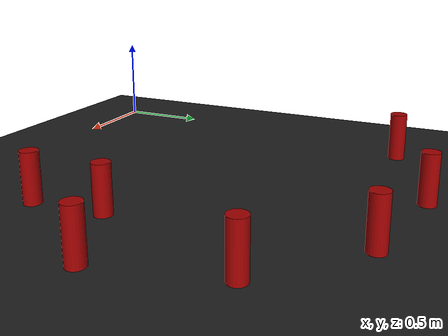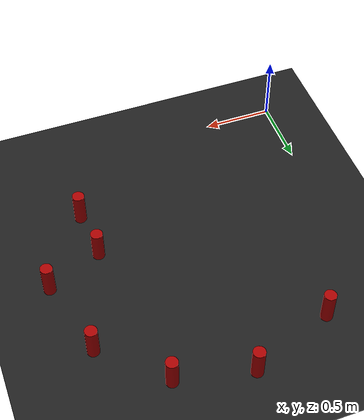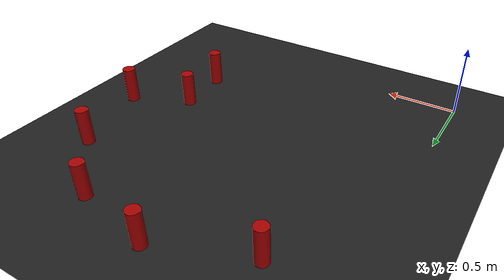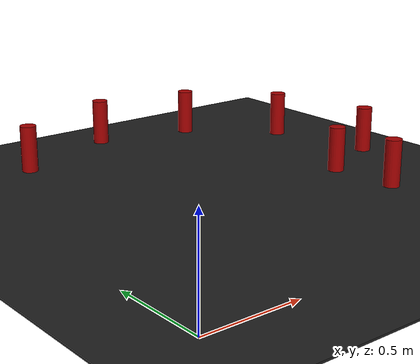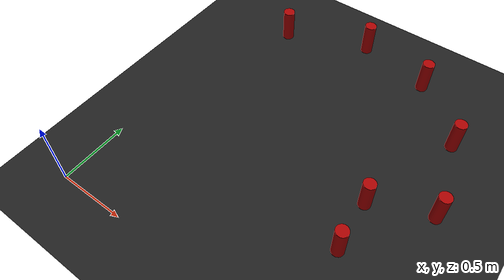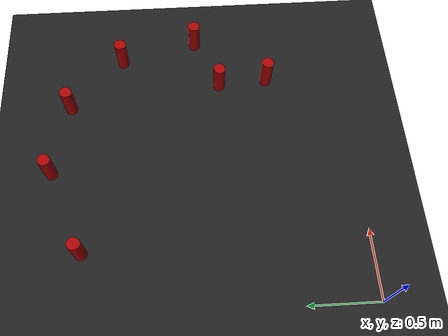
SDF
<sdf version="1.7">
 <world name="default">
  <model name="ground_plane">
   <pose>-0.598773 -0.01473 0 0 -0 0</pose>
   <static>1</static>
   <link name="link">
    <collision name="collision"><geometry><box><size>10 10 0.01</size></box></geometry></collision>
    <visual name="visual">
     <geometry><box><size>10 10 0.01</size></box></geometry>
     <material>
      <script><uri>file://media/materials/scripts/gazebo.material</uri><name>Gazebo/FlatBlack</name></script>
     </material>
    </visual>
   </link>
  </model>
  <model name="unit_cylinder_clone">
   <link name="link">
    <inertial>
     <mass>1</mass>
     <inertia><ixx>0.145833</ixx><ixy>0</ixy><ixz>0</ixz><iyy>0.145833</iyy><iyz>0</iyz><izz>0.125</izz></inertia>
    </inertial>
    <visual name="visual">
     <geometry><cylinder><radius>0.0428756</radius><length>0.247552</length></cylinder></geometry>
     <material>
      <script><name>Gazebo/Grey</name><uri>file://media/materials/scripts/gazebo.material</uri></script>
      <shader type="pixel"><normal_map>__default__</normal_map></shader>
      <diffuse>0.643 0 0 1</diffuse>
      <ambient>0.3 0.3 0.3 1</ambient>
      <specular>0.01 0.01 0.01 1</specular>
      <emissive>0 0 0 1</emissive>
     </material>
    </visual>
    <collision name="collision">
     <geometry><cylinder><radius>0.042876</radius><length>0.247552</length></cylinder></geometry>
     <surface>
      <friction>
       <ode><mu>1</mu><mu2>1</mu2><fdir1>0 0 0</fdir1><slip1>0</slip1><slip2>0</slip2></ode>
       <torsional>
        <coefficient>1</coefficient>
        <patch_radius>0</patch_radius>
        <surface_radius>0</surface_radius>
        <use_patch_radius>1</use_patch_radius>
        <ode><slip>0</slip></ode>
       </torsional>
      </friction>
      <bounce><restitution_coefficient>0</restitution_coefficient><threshold>1e+06</threshold></bounce>
      <contact>
       <collide_without_contact>0</collide_without_contact>
       <collide_without_contact_bitmask>1</collide_without_contact_bitmask>
       <collide_bitmask>1</collide_bitmask>
       <ode>
        <soft_cfm>0</soft_cfm>
        <soft_erp>0.2</soft_erp>
        <kp>1e+13</kp>
        <kd>1</kd>
        <max_vel>0.01</max_vel>
        <min_depth>0</min_depth>
       </ode>
       <bullet>
        <split_impulse>1</split_impulse>
        <split_impulse_penetration_threshold>-0.01</split_impulse_penetration_threshold>
        <soft_cfm>0</soft_cfm>
        <soft_erp>0.2</soft_erp>
        <kp>1e+13</kp>
        <kd>1</kd>
       </bullet>
      </contact>
     </surface>
    </collision>
   </link>
   <static>0</static>
   <pose>1.72106 0.604138 0.173772 -8.9e-05 1.8e-05 -0.057593</pose>
  </model>
  <model name="unit_cylinder_clone_clone">
   <link name="link">
    <inertial>
     <mass>1</mass>
     <inertia><ixx>0.145833</ixx><ixy>0</ixy><ixz>0</ixz><iyy>0.145833</iyy><iyz>0</iyz><izz>0.125</izz></inertia>
    </inertial>
    <visual name="visual">
     <geometry><cylinder><radius>0.0428756</radius><length>0.238678</length></cylinder></geometry>
     <material>
      <script><name>Gazebo/Grey</name><uri>file://media/materials/scripts/gazebo.material</uri></script>
      <shader type="pixel"><normal_map>__default__</normal_map></shader>
      <diffuse>0.643 0 0 1</diffuse>
      <ambient>0.3 0.3 0.3 1</ambient>
      <specular>0.01 0.01 0.01 1</specular>
      <emissive>0 0 0 1</emissive>
     </material>
    </visual>
    <collision name="collision">
     <geometry><cylinder><radius>0.042876</radius><length>0.238678</length></cylinder></geometry>
     <surface>
      <friction>
       <ode><mu>1</mu><mu2>1</mu2><fdir1>0 0 0</fdir1><slip1>0</slip1><slip2>0</slip2></ode>
       <torsional>
        <coefficient>1</coefficient>
        <patch_radius>0</patch_radius>
        <surface_radius>0</surface_radius>
        <use_patch_radius>1</use_patch_radius>
        <ode><slip>0</slip></ode>
       </torsional>
      </friction>
      <bounce><restitution_coefficient>0</restitution_coefficient><threshold>1e+06</threshold></bounce>
      <contact>
       <collide_without_contact>0</collide_without_contact>
       <collide_without_contact_bitmask>1</collide_without_contact_bitmask>
       <collide_bitmask>1</collide_bitmask>
       <ode>
        <soft_cfm>0</soft_cfm>
        <soft_erp>0.2</soft_erp>
        <kp>1e+13</kp>
        <kd>1</kd>
        <max_vel>0.01</max_vel>
        <min_depth>0</min_depth>
       </ode>
       <bullet>
        <split_impulse>1</split_impulse>
        <split_impulse_penetration_threshold>-0.01</split_impulse_penetration_threshold>
        <soft_cfm>0</soft_cfm>
        <soft_erp>0.2</soft_erp>
        <kp>1e+13</kp>
        <kd>1</kd>
       </bullet>
      </contact>
     </surface>
    </collision>
   </link>
   <static>0</static>
   <pose>1.69338 0.966214 0.169343 -0.000112 4.7e-05 -0.052122</pose>
  </model>
  <model name="unit_cylinder_clone_clone_3">
   <link name="link">
    <inertial>
     <mass>1</mass>
     <inertia><ixx>0.145833</ixx><ixy>0</ixy><ixz>0</ixz><iyy>0.145833</iyy><iyz>0</iyz><izz>0.125</izz></inertia>
    </inertial>
    <visual name="visual">
     <geometry><cylinder><radius>0.0428756</radius><length>0.247552</length></cylinder></geometry>
     <material>
      <script><name>Gazebo/Grey</name><uri>file://media/materials/scripts/gazebo.material</uri></script>
      <shader type="pixel"><normal_map>__default__</normal_map></shader>
      <diffuse>0.643 0 0 1</diffuse>
      <ambient>0.3 0.3 0.3 1</ambient>
      <specular>0.01 0.01 0.01 1</specular>
      <emissive>0 0 0 1</emissive>
     </material>
    </visual>
    <collision name="collision">
     <geometry><cylinder><radius>0.042876</radius><length>0.247552</length></cylinder></geometry>
     <surface>
      <friction>
       <ode><mu>1</mu><mu2>1</mu2><fdir1>0 0 0</fdir1><slip1>0</slip1><slip2>0</slip2></ode>
       <torsional>
        <coefficient>1</coefficient>
        <patch_radius>0</patch_radius>
        <surface_radius>0</surface_radius>
        <use_patch_radius>1</use_patch_radius>
        <ode><slip>0</slip></ode>
       </torsional>
      </friction>
      <bounce><restitution_coefficient>0</restitution_coefficient><threshold>1e+06</threshold></bounce>
      <contact>
       <collide_without_contact>0</collide_without_contact>
       <collide_without_contact_bitmask>1</collide_without_contact_bitmask>
       <collide_bitmask>1</collide_bitmask>
       <ode>
        <soft_cfm>0</soft_cfm>
        <soft_erp>0.2</soft_erp>
        <kp>1e+13</kp>
        <kd>1</kd>
        <max_vel>0.01</max_vel>
        <min_depth>0</min_depth>
       </ode>
       <bullet>
        <split_impulse>1</split_impulse>
        <split_impulse_penetration_threshold>-0.01</split_impulse_penetration_threshold>
        <soft_cfm>0</soft_cfm>
        <soft_erp>0.2</soft_erp>
        <kp>1e+13</kp>
        <kd>1</kd>
       </bullet>
      </contact>
     </surface>
    </collision>
   </link>
   <static>0</static>
   <pose>0.413204 1.97392 0.173774 -0.000123 -5.8e-05 -0.058944</pose>
  </model>
  <model name="unit_cylinder_clone_clone_4">
   <link name="link">
    <inertial>
     <mass>1</mass>
     <inertia><ixx>0.145833</ixx><ixy>0</ixy><ixz>0</ixz><iyy>0.145833</iyy><iyz>0</iyz><izz>0.125</izz></inertia>
    </inertial>
    <visual name="visual">
     <geometry><cylinder><radius>0.0428756</radius><length>0.247552</length></cylinder></geometry>
     <material>
      <script><name>Gazebo/Grey</name><uri>file://media/materials/scripts/gazebo.material</uri></script>
      <shader type="pixel"><normal_map>__default__</normal_map></shader>
      <diffuse>0.643 0 0 1</diffuse>
      <ambient>0.3 0.3 0.3 1</ambient>
      <specular>0.01 0.01 0.01 1</specular>
      <emissive>0 0 0 1</emissive>
     </material>
    </visual>
    <collision name="collision">
     <geometry><cylinder><radius>0.042876</radius><length>0.247552</length></cylinder></geometry>
     <surface>
      <friction>
       <ode><mu>1</mu><mu2>1</mu2><fdir1>0 0 0</fdir1><slip1>0</slip1><slip2>0</slip2></ode>
       <torsional>
        <coefficient>1</coefficient>
        <patch_radius>0</patch_radius>
        <surface_radius>0</surface_radius>
        <use_patch_radius>1</use_patch_radius>
        <ode><slip>0</slip></ode>
       </torsional>
      </friction>
      <bounce><restitution_coefficient>0</restitution_coefficient><threshold>1e+06</threshold></bounce>
      <contact>
       <collide_without_contact>0</collide_without_contact>
       <collide_without_contact_bitmask>1</collide_without_contact_bitmask>
       <collide_bitmask>1</collide_bitmask>
       <ode>
        <soft_cfm>0</soft_cfm>
        <soft_erp>0.2</soft_erp>
        <kp>1e+13</kp>
        <kd>1</kd>
        <max_vel>0.01</max_vel>
        <min_depth>0</min_depth>
       </ode>
       <bullet>
        <split_impulse>1</split_impulse>
        <split_impulse_penetration_threshold>-0.01</split_impulse_penetration_threshold>
        <soft_cfm>0</soft_cfm>
        <soft_erp>0.2</soft_erp>
        <kp>1e+13</kp>
        <kd>1</kd>
       </bullet>
      </contact>
     </surface>
    </collision>
   </link>
   <static>0</static>
   <pose>1.0106 2.20713 0.173774 -0.000165 -5.5e-05 -0.057294</pose>
  </model>
  <model name="unit_cylinder_clone_clone_5">
   <link name="link">
    <inertial>
     <mass>1</mass>
     <inertia><ixx>0.145833</ixx><ixy>0</ixy><ixz>0</ixz><iyy>0.145833</iyy><iyz>0</iyz><izz>0.125</izz></inertia>
    </inertial>
    <visual name="visual">
     <geometry><cylinder><radius>0.0428756</radius><length>0.247552</length></cylinder></geometry>
     <material>
      <script><name>Gazebo/Grey</name><uri>file://media/materials/scripts/gazebo.material</uri></script>
      <shader type="pixel"><normal_map>__default__</normal_map></shader>
      <diffuse>0.643 0 0 1</diffuse>
      <ambient>0.3 0.3 0.3 1</ambient>
      <specular>0.01 0.01 0.01 1</specular>
      <emissive>0 0 0 1</emissive>
     </material>
    </visual>
    <collision name="collision">
     <geometry><cylinder><radius>0.042876</radius><length>0.247552</length></cylinder></geometry>
     <surface>
      <friction>
       <ode><mu>1</mu><mu2>1</mu2><fdir1>0 0 0</fdir1><slip1>0</slip1><slip2>0</slip2></ode>
       <torsional>
        <coefficient>1</coefficient>
        <patch_radius>0</patch_radius>
        <surface_radius>0</surface_radius>
        <use_patch_radius>1</use_patch_radius>
        <ode><slip>0</slip></ode>
       </torsional>
      </friction>
      <bounce><restitution_coefficient>0</restitution_coefficient><threshold>1e+06</threshold></bounce>
      <contact>
       <collide_without_contact>0</collide_without_contact>
       <collide_without_contact_bitmask>1</collide_without_contact_bitmask>
       <collide_bitmask>1</collide_bitmask>
       <ode>
        <soft_cfm>0</soft_cfm>
        <soft_erp>0.2</soft_erp>
        <kp>1e+13</kp>
        <kd>1</kd>
        <max_vel>0.01</max_vel>
        <min_depth>0</min_depth>
       </ode>
       <bullet>
        <split_impulse>1</split_impulse>
        <split_impulse_penetration_threshold>-0.01</split_impulse_penetration_threshold>
        <soft_cfm>0</soft_cfm>
        <soft_erp>0.2</soft_erp>
        <kp>1e+13</kp>
        <kd>1</kd>
       </bullet>
      </contact>
     </surface>
    </collision>
   </link>
   <static>0</static>
   <pose>1.54348 2.09021 0.173774 -0.000143 4.1e-05 -0.066476</pose>
  </model>
  <model name="unit_cylinder_clone_clone_5_clone">
   <link name="link">
    <inertial>
     <mass>1</mass>
     <inertia><ixx>0.145833</ixx><ixy>0</ixy><ixz>0</ixz><iyy>0.145833</iyy><iyz>0</iyz><izz>0.125</izz></inertia>
    </inertial>
    <visual name="visual">
     <geometry><cylinder><radius>0.0428756</radius><length>0.247552</length></cylinder></geometry>
     <material>
      <script><name>Gazebo/Grey</name><uri>file://media/materials/scripts/gazebo.material</uri></script>
      <shader type="pixel"><normal_map>__default__</normal_map></shader>
      <diffuse>0.643 0 0 1</diffuse>
      <ambient>0.3 0.3 0.3 1</ambient>
      <specular>0.01 0.01 0.01 1</specular>
      <emissive>0 0 0 1</emissive>
     </material>
    </visual>
    <collision name="collision">
     <geometry><cylinder><radius>0.042876</radius><length>0.247552</length></cylinder></geometry>
     <surface>
      <friction>
       <ode><mu>1</mu><mu2>1</mu2><fdir1>0 0 0</fdir1><slip1>0</slip1><slip2>0</slip2></ode>
       <torsional>
        <coefficient>1</coefficient>
        <patch_radius>0</patch_radius>
        <surface_radius>0</surface_radius>
        <use_patch_radius>1</use_patch_radius>
        <ode><slip>0</slip></ode>
       </torsional>
      </friction>
      <bounce><restitution_coefficient>0</restitution_coefficient><threshold>1e+06</threshold></bounce>
      <contact>
       <collide_without_contact>0</collide_without_contact>
       <collide_without_contact_bitmask>1</collide_without_contact_bitmask>
       <collide_bitmask>1</collide_bitmask>
       <ode>
        <soft_cfm>0</soft_cfm>
        <soft_erp>0.2</soft_erp>
        <kp>1e+13</kp>
        <kd>1</kd>
        <max_vel>0.01</max_vel>
        <min_depth>0</min_depth>
       </ode>
       <bullet>
        <split_impulse>1</split_impulse>
        <split_impulse_penetration_threshold>-0.01</split_impulse_penetration_threshold>
        <soft_cfm>0</soft_cfm>
        <soft_erp>0.2</soft_erp>
        <kp>1e+13</kp>
        <kd>1</kd>
       </bullet>
      </contact>
     </surface>
    </collision>
   </link>
   <static>0</static>
   <pose>1.9477 1.70397 0.173773 -0.000134 4.5e-05 -0.118769</pose>
  </model>
  <model name="unit_cylinder_clone_clone_5_clone_clone">
   <link name="link">
    <inertial>
     <mass>1</mass>
     <inertia><ixx>0.145833</ixx><ixy>0</ixy><ixz>0</ixz><iyy>0.145833</iyy><iyz>0</iyz><izz>0.125</izz></inertia>
    </inertial>
    <visual name="visual">
     <geometry><cylinder><radius>0.0428756</radius><length>0.247552</length></cylinder></geometry>
     <material>
      <script><name>Gazebo/Grey</name><uri>file://media/materials/scripts/gazebo.material</uri></script>
      <shader type="pixel"><normal_map>__default__</normal_map></shader>
      <diffuse>0.643 0 0 1</diffuse>
      <ambient>0.3 0.3 0.3 1</ambient>
      <specular>0.01 0.01 0.01 1</specular>
      <emissive>0 0 0 1</emissive>
     </material>
    </visual>
    <collision name="collision">
     <geometry><cylinder><radius>0.042876</radius><length>0.247552</length></cylinder></geometry>
     <surface>
      <friction>
       <ode><mu>1</mu><mu2>1</mu2><fdir1>0 0 0</fdir1><slip1>0</slip1><slip2>0</slip2></ode>
       <torsional>
        <coefficient>1</coefficient>
        <patch_radius>0</patch_radius>
        <surface_radius>0</surface_radius>
        <use_patch_radius>1</use_patch_radius>
        <ode><slip>0</slip></ode>
       </torsional>
      </friction>
      <bounce><restitution_coefficient>0</restitution_coefficient><threshold>1e+06</threshold></bounce>
      <contact>
       <collide_without_contact>0</collide_without_contact>
       <collide_without_contact_bitmask>1</collide_without_contact_bitmask>
       <collide_bitmask>1</collide_bitmask>
       <ode>
        <soft_cfm>0</soft_cfm>
        <soft_erp>0.2</soft_erp>
        <kp>1e+13</kp>
        <kd>1</kd>
        <max_vel>0.01</max_vel>
        <min_depth>0</min_depth>
       </ode>
       <bullet>
        <split_impulse>1</split_impulse>
        <split_impulse_penetration_threshold>-0.01</split_impulse_penetration_threshold>
        <soft_cfm>0</soft_cfm>
        <soft_erp>0.2</soft_erp>
        <kp>1e+13</kp>
        <kd>1</kd>
       </bullet>
      </contact>
     </surface>
    </collision>
   </link>
   <static>0</static>
   <pose>2.09054 1.13987 0.173775 -0.000165 -0.000114 -0.118832</pose>
  </model>
 </world>
</sdf>
